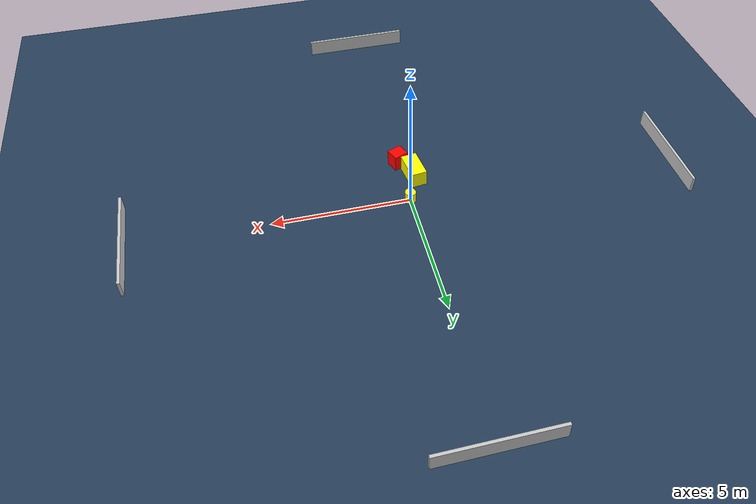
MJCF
<?xml version="1.0" ?>
<mujoco model="generated_environment">
  <option timestep="0.01" integrator="RK4" cone="elliptic"/>
  <default>
    <geom density="1"/>
  </default>
  <asset>
    <texture builtin="gradient" height="3072" name="skybox" rgb1="0.3 0.5 0.7" rgb2="0 0 0" type="skybox" width="512"/>
    <texture builtin="checker" height="300" name="groundplane" rgb1="0.2 0.3 0.4" rgb2="0.1 0.2 0.3" type="2d" width="300"/>
    <material name="groundplane" reflectance="0.2" texrepeat="5 5" texture="groundplane"/>
  </asset>
  <worldbody>
    <light dir="0 0 -1" directional="true" pos="0 0 1.5"/>
    <geom condim="3" friction="0.5 0.005 0.001" material="groundplane" name="floor" pos="0 0 0" size="0 0 0.05" type="plane"/>
    <body name="walls">
      <geom name="wall_1" condim="4" pos="-10.0 0.0 0.3" rgba="0.800000011920929 0.800000011920929 0.800000011920929 1.0" size="0.05 2.0 0.3" type="box"/>
      <geom name="wall_2" condim="4" pos="10.0 0.0 0.3" rgba="0.800000011920929 0.800000011920929 0.800000011920929 1.0" size="0.05 2.0 0.3" type="box"/>
      <geom name="wall_3" condim="4" pos="0.0 -10.0 0.3" rgba="0.800000011920929 0.800000011920929 0.800000011920929 1.0" size="2.0 0.05 0.3" type="box"/>
      <geom name="wall_4" condim="4" pos="0.0 10.0 0.3" rgba="0.800000011920929 0.800000011920929 0.800000011920929 1.0" size="2.0 0.05 0.3" type="box"/>
    </body>
    <body name="robot">
      <joint name="joint_x" type="slide" pos="0 0 0" axis="1 0 0"/>
      <joint name="joint_y" type="slide" pos="0 0 0" axis="0 1 0"/>
      <geom name="robot" type="cylinder" pos="0.0 0.0 0.2" size="0.2 0.2 0.0" mass="5.0" friction="1.0 0.005 0.0001" condim="4" rgba="1.0 1.0 0.0 1.0"/>
    </body>
    <body name="obstacle_1_movable">
      <geom name="obstacle_1_movable" condim="4" pos="-0.4179423894838404 -1.195893996244604 0.3" euler="0 0 97.38423112699344" friction="0.0 0.005 0.001" rgba="1.0 1.0 0.0 1.0" size="0.5527222613774414 0.295798137089227 0.3" type="box" mass="0.1"/>
      <joint type="free"/>
    </body>
    <body name="obstacle_2_static">
      <geom name="obstacle_2_static" condim="4" pos="-0.00501901934846392 -1.993220408610497 0.3" euler="0 0 22.017118463612235" friction="0.0 0.005 0.001" rgba="1.0 0.0 0.0 1.0" size="0.2765041608041803 0.2514688519763177 0.3" type="box"/>
    </body>
  </worldbody>
  <actuator>
    <motor name="actuator_x" joint="joint_x" gear="1" ctrlrange="-1 1"/>
    <motor name="actuator_y" joint="joint_y" gear="1" ctrlrange="-1 1"/>
  </actuator>
</mujoco>
